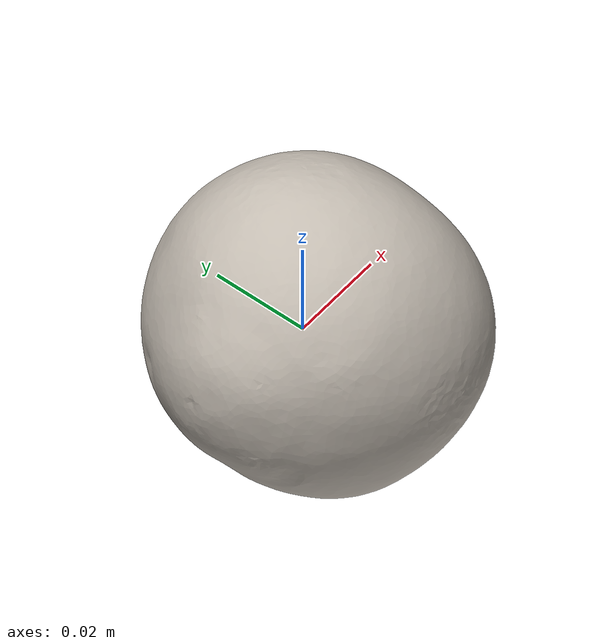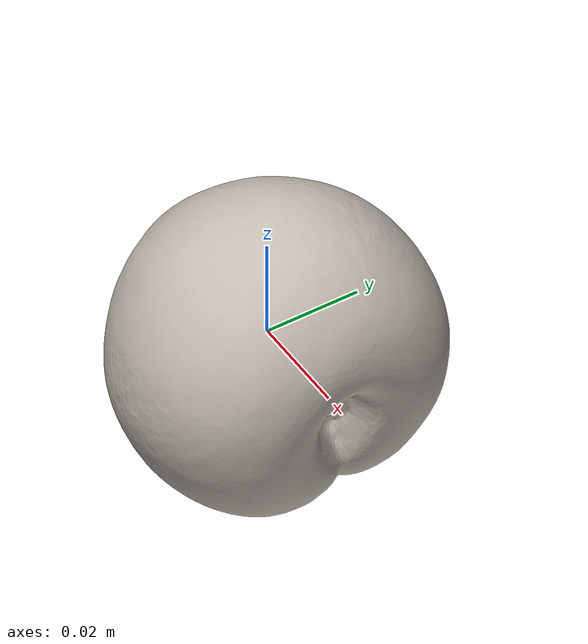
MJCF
<mujoco model="peach">
  <default>
    <default class="visual">
      <geom group="1" type="mesh" contype="0" conaffinity="0"/>
    </default>
    <default class="collision">
      <geom group="0" type="mesh"/>
    </default>
  </default>
  <asset>
    <texture type="2d" name="peach" file="peach.png"/>
    <material name="peach" texture="peach" specular="0.4000000000000001" shininess="0.001"/>
    <mesh name="peach" file="peach.obj"/>
  </asset>
  <worldbody>
    <body>
    <body name="object">
      <geom material="peach" mesh="peach" class="visual"/>
      <geom mesh="peach" class="collision"/>
    </body>
	      <site rgba="0 0 0 0" size="0.005" pos="0 0 -0.04" name="bottom_site" />
	      <site rgba="0 0 0 0" size="0.005" pos="0 0 0.04" name="top_site" />
	      <site rgba="0 0 0 0" size="0.005" pos="0.005 0.005 0" name="horizontal_radius_site" />
   </body>
  </worldbody>
</mujoco>
